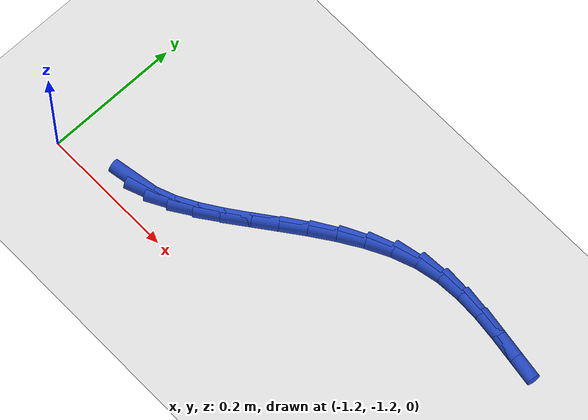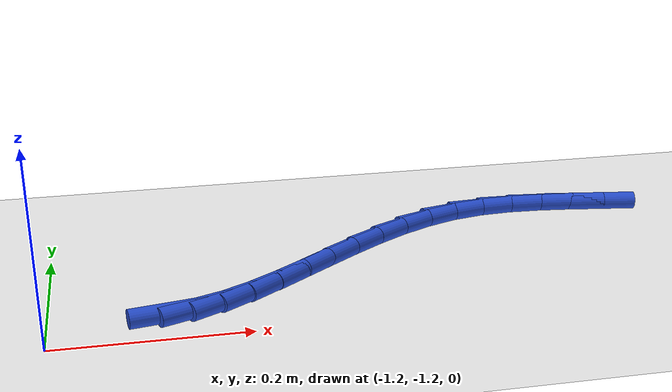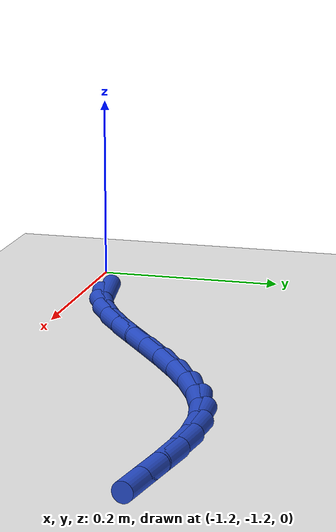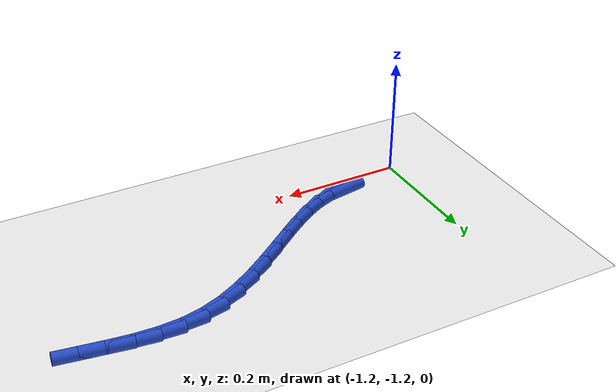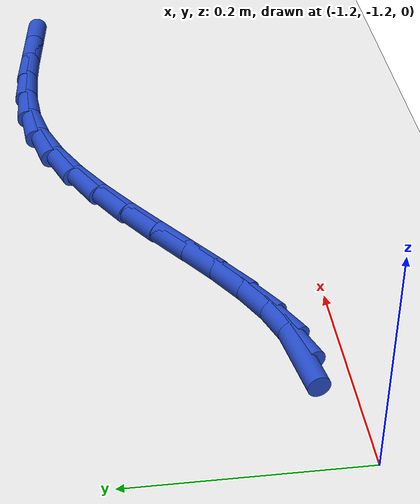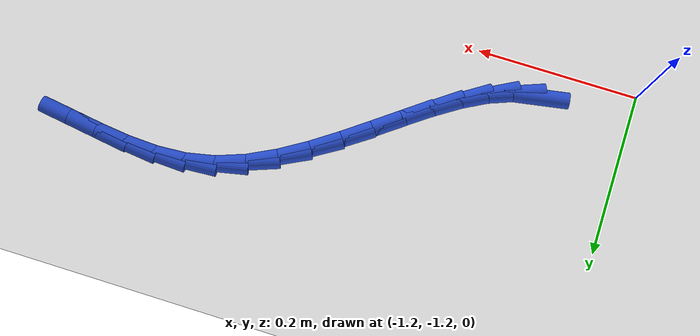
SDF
<sdf version="1.6">
 <world name="default">
  <model name="ground_plane">
   <static>1</static>
   <link name="link">
    <collision name="collision">
     <geometry><plane><normal>0 0 1</normal><size>100 100</size></plane></geometry>
     <surface><friction><ode><mu>100</mu><mu2>50</mu2></ode></friction></surface>
    </collision>
    <visual name="visual">
     <cast_shadows>0</cast_shadows>
     <geometry><plane><normal>0 0 1</normal><size>100 100</size></plane></geometry>
     <material>
      <script><uri>file://media/materials/scripts/gazebo.material</uri><name>Gazebo/WhiteGlow</name></script>
     </material>
    </visual>
   </link>
  </model>
  <model name="line">
   <link name="link_149">
    <pose>-1.0819247503774192 -1.162917229315184 0.01 0 1.57 0.16988279445111776</pose>
    <collision name="collision">
     <geometry><cylinder><radius>0.01</radius><length>0.08</length></cylinder></geometry>
    </collision>
    <visual name="visual">
     <material>
      <script><name>Gazebo/Blue</name><uri>file://media/materials/scripts/gazebo.material</uri></script>
     </material>
     <geometry><cylinder><radius>0.01</radius><length>0.08</length></cylinder></geometry>
    </visual>
   </link>
   <link name="link_150">
    <pose>-1.0540187601551645 -1.15813034275904 0.01 0 1.57 0.3640699669075419</pose>
    <collision name="collision">
     <geometry><cylinder><radius>0.01</radius><length>0.08</length></cylinder></geometry>
    </collision>
    <visual name="visual">
     <material>
      <script><name>Gazebo/Blue</name><uri>file://media/materials/scripts/gazebo.material</uri></script>
     </material>
     <geometry><cylinder><radius>0.01</radius><length>0.08</length></cylinder></geometry>
    </visual>
   </link>
   <link name="link_151">
    <pose>-1.0255236462196136 -1.1472720914457273 0.01 0 1.57 0.4961997639121222</pose>
    <collision name="collision">
     <geometry><cylinder><radius>0.01</radius><length>0.08</length></cylinder></geometry>
    </collision>
    <visual name="visual">
     <material>
      <script><name>Gazebo/Blue</name><uri>file://media/materials/scripts/gazebo.material</uri></script>
     </material>
     <geometry><cylinder><radius>0.01</radius><length>0.08</length></cylinder></geometry>
    </visual>
   </link>
   <link name="link_152">
    <pose>-0.9964040180312826 -1.1315073570404592 0.01 0 1.57 0.5798995618169545</pose>
    <collision name="collision">
     <geometry><cylinder><radius>0.01</radius><length>0.08</length></cylinder></geometry>
    </collision>
    <visual name="visual">
     <material>
      <script><name>Gazebo/Blue</name><uri>file://media/materials/scripts/gazebo.material</uri></script>
     </material>
     <geometry><cylinder><radius>0.01</radius><length>0.08</length></cylinder></geometry>
    </visual>
   </link>
   <link name="link_153">
    <pose>-0.9666244850506872 -1.1120010212084492 0.01 0 1.57 0.6270673635742475</pose>
    <collision name="collision">
     <geometry><cylinder><radius>0.01</radius><length>0.08</length></cylinder></geometry>
    </collision>
    <visual name="visual">
     <material>
      <script><name>Gazebo/Blue</name><uri>file://media/materials/scripts/gazebo.material</uri></script>
     </material>
     <geometry><cylinder><radius>0.01</radius><length>0.08</length></cylinder></geometry>
    </visual>
   </link>
   <link name="link_154">
    <pose>-0.9361496567383437 -1.089917965614911 0.01 0 1.57 0.6453598863995712</pose>
    <collision name="collision">
     <geometry><cylinder><radius>0.01</radius><length>0.08</length></cylinder></geometry>
    </collision>
    <visual name="visual">
     <material>
      <script><name>Gazebo/Blue</name><uri>file://media/materials/scripts/gazebo.material</uri></script>
     </material>
     <geometry><cylinder><radius>0.01</radius><length>0.08</length></cylinder></geometry>
    </visual>
   </link>
   <link name="link_155">
    <pose>-0.9049441425547677 -1.0664230719250576 0.01 0 1.57 0.6387431606769479</pose>
    <collision name="collision">
     <geometry><cylinder><radius>0.01</radius><length>0.08</length></cylinder></geometry>
    </collision>
    <visual name="visual">
     <material>
      <script><name>Gazebo/Blue</name><uri>file://media/materials/scripts/gazebo.material</uri></script>
     </material>
     <geometry><cylinder><radius>0.01</radius><length>0.08</length></cylinder></geometry>
    </visual>
   </link>
   <link name="link_156">
    <pose>-0.872972551960475 -1.0426812218041026 0.01 0 1.57 0.608321541058659</pose>
    <collision name="collision">
     <geometry><cylinder><radius>0.01</radius><length>0.08</length></cylinder></geometry>
    </collision>
    <visual name="visual">
     <material>
      <script><name>Gazebo/Blue</name><uri>file://media/materials/scripts/gazebo.material</uri></script>
     </material>
     <geometry><cylinder><radius>0.01</radius><length>0.08</length></cylinder></geometry>
    </visual>
   </link>
   <link name="link_157">
    <pose>-0.8401994944159819 -1.0198572969172597 0.01 0 1.57 0.5529077043477963</pose>
    <collision name="collision">
     <geometry><cylinder><radius>0.01</radius><length>0.08</length></cylinder></geometry>
    </collision>
    <visual name="visual">
     <material>
      <script><name>Gazebo/Blue</name><uri>file://media/materials/scripts/gazebo.material</uri></script>
     </material>
     <geometry><cylinder><radius>0.01</radius><length>0.08</length></cylinder></geometry>
    </visual>
   </link>
   <link name="link_158">
    <pose>-0.8065895793818038 -0.9991161789297418 0.01 0 1.57 0.4694850269028886</pose>
    <collision name="collision">
     <geometry><cylinder><radius>0.01</radius><length>0.08</length></cylinder></geometry>
    </collision>
    <visual name="visual">
     <material>
      <script><name>Gazebo/Blue</name><uri>file://media/materials/scripts/gazebo.material</uri></script>
     </material>
     <geometry><cylinder><radius>0.01</radius><length>0.08</length></cylinder></geometry>
    </visual>
   </link>
   <link name="link_159">
    <pose>-0.7721074163184571 -0.9816227495067631 0.01 0 1.57 0.3540476421332912</pose>
    <collision name="collision">
     <geometry><cylinder><radius>0.01</radius><length>0.08</length></cylinder></geometry>
    </collision>
    <visual name="visual">
     <material>
      <script><name>Gazebo/Blue</name><uri>file://media/materials/scripts/gazebo.material</uri></script>
     </material>
     <geometry><cylinder><radius>0.01</radius><length>0.08</length></cylinder></geometry>
    </visual>
   </link>
   <link name="link_160">
    <pose>-0.7367176146864578 -0.9685418903135363 0.01 0 1.57 0.20542496714265482</pose>
    <collision name="collision">
     <geometry><cylinder><radius>0.01</radius><length>0.08</length></cylinder></geometry>
    </collision>
    <visual name="visual">
     <material>
      <script><name>Gazebo/Blue</name><uri>file://media/materials/scripts/gazebo.material</uri></script>
     </material>
     <geometry><cylinder><radius>0.01</radius><length>0.08</length></cylinder></geometry>
    </visual>
   </link>
   <link name="link_161">
    <pose>-0.7003967858942182 -0.960973930051729 0.01 0 1.57 0.060267305857593496</pose>
    <collision name="collision">
     <geometry><cylinder><radius>0.01</radius><length>0.08</length></cylinder></geometry>
    </collision>
    <visual name="visual">
     <material>
      <script><name>Gazebo/Blue</name><uri>file://media/materials/scripts/gazebo.material</uri></script>
     </material>
     <geometry><cylinder><radius>0.01</radius><length>0.08</length></cylinder></geometry>
    </visual>
   </link>
   <link name="link_162">
    <pose>-0.6633595443061027 -0.9587390888713185 0.01 0 1.57 -0.04666151641594714</pose>
    <collision name="collision">
     <geometry><cylinder><radius>0.01</radius><length>0.08</length></cylinder></geometry>
    </collision>
    <visual name="visual">
     <material>
      <script><name>Gazebo/Blue</name><uri>file://media/materials/scripts/gazebo.material</uri></script>
     </material>
     <geometry><cylinder><radius>0.01</radius><length>0.08</length></cylinder></geometry>
    </visual>
   </link>
   <link name="link_163">
    <pose>-0.6260391147499349 -0.9604817816780027 0.01 0 1.57 -0.1157539482461876</pose>
    <collision name="collision">
     <geometry><cylinder><radius>0.01</radius><length>0.08</length></cylinder></geometry>
    </collision>
    <visual name="visual">
     <material>
      <script><name>Gazebo/Blue</name><uri>file://media/materials/scripts/gazebo.material</uri></script>
     </material>
     <geometry><cylinder><radius>0.01</radius><length>0.08</length></cylinder></geometry>
    </visual>
   </link>
   <link name="link_164">
    <pose>-0.5888768367181595 -0.964802778324693 0.01 0 1.57 -0.14930859453365194</pose>
    <collision name="collision">
     <geometry><cylinder><radius>0.01</radius><length>0.08</length></cylinder></geometry>
    </collision>
    <visual name="visual">
     <material>
      <script><name>Gazebo/Blue</name><uri>file://media/materials/scripts/gazebo.material</uri></script>
     </material>
     <geometry><cylinder><radius>0.01</radius><length>0.08</length></cylinder></geometry>
    </visual>
   </link>
   <link name="link_165">
    <pose>-0.552314049703221 -0.9703028486643 0.01 0 1.57 -0.14755768906057914</pose>
    <collision name="collision">
     <geometry><cylinder><radius>0.01</radius><length>0.08</length></cylinder></geometry>
    </collision>
    <visual name="visual">
     <material>
      <script><name>Gazebo/Blue</name><uri>file://media/materials/scripts/gazebo.material</uri></script>
     </material>
     <geometry><cylinder><radius>0.01</radius><length>0.08</length></cylinder></geometry>
    </visual>
   </link>
  </model>
 </world>
</sdf>
